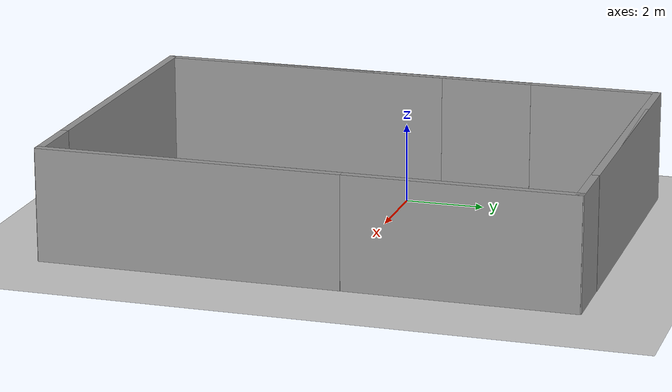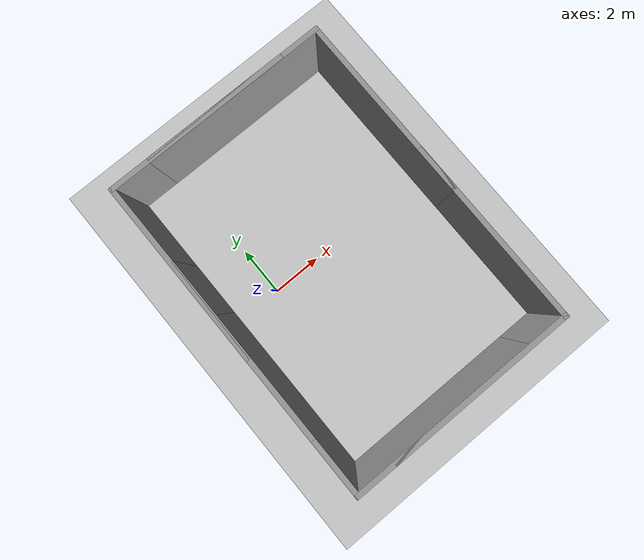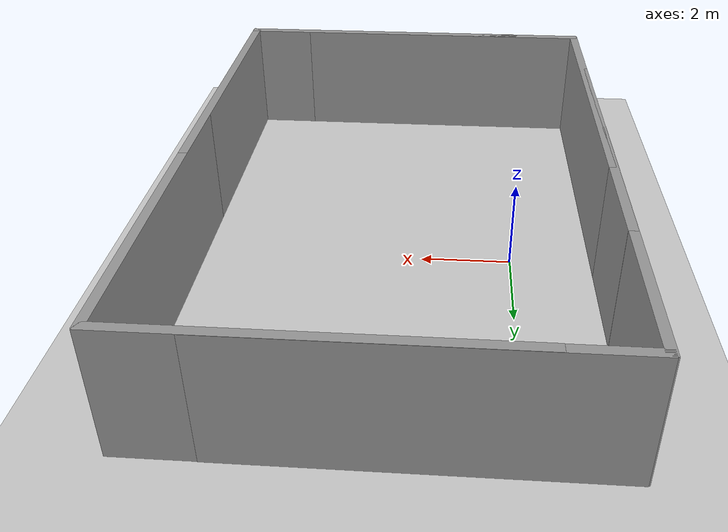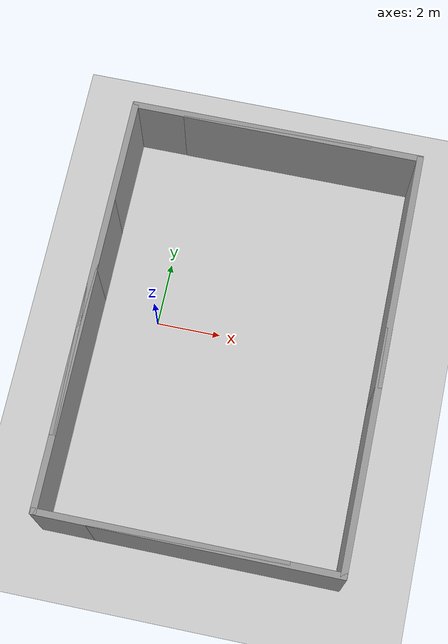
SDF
<sdf version="1.7">
 <world name="default">
  <plugin name="gazebo_ros_state" filename="libgazebo_ros_state.so">
   <ros><namespace>/gazebo_spawner</namespace></ros>
   <update_rate>1.0</update_rate>
  </plugin>
  <model name="ground_plane">
   <static>1</static>
   <link name="link">
    <collision name="collision">
     <geometry><plane><normal>0 0 1</normal><size>100 100</size></plane></geometry>
     <surface>
      <contact><collide_bitmask>65535</collide_bitmask></contact>
      <friction><ode><mu>100</mu><mu2>50</mu2></ode></friction>
     </surface>
    </collision>
    <visual name="visual">
     <cast_shadows>0</cast_shadows>
     <geometry><plane><normal>0 0 1</normal><size>100 100</size></plane></geometry>
     <material>
      <script><uri>file://media/materials/scripts/gazebo.material</uri><name>Gazebo/Grey</name></script>
     </material>
    </visual>
   </link>
  </model>
  <light name="sun" type="directional">
   <pose>0 0 10 0 -0 0</pose>
   <diffuse>0.8 0.8 0.8 1</diffuse>
   <specular>0.2 0.2 0.2 1</specular>
   <attenuation>
    <range>1000</range>
    <constant>0.9</constant>
    <linear>0.01</linear>
    <quadratic>0.001</quadratic>
   </attenuation>
   <direction>-0.5 0.1 -0.9</direction>
   <spot><inner_angle>0</inner_angle><outer_angle>0</outer_angle><falloff>0</falloff></spot>
  </light>
  <gravity>0 0 -9.8</gravity>
  <magnetic_field>6e-06 2.3e-05 -4.2e-05</magnetic_field>
  <atmosphere type="adiabatic"/>
  <physics type="ode">
   <max_step_size>0.001</max_step_size>
   <real_time_factor>1</real_time_factor>
   <real_time_update_rate>1000</real_time_update_rate>
  </physics>
  <scene><ambient>0.4 0.4 0.4 1</ambient><background>0.7 0.7 0.7 1</background><shadows>1</shadows></scene>
  <audio><device>default</device></audio>
  <spherical_coordinates>
   <surface_model>EARTH_WGS84</surface_model>
   <latitude_deg>0</latitude_deg>
   <longitude_deg>0</longitude_deg>
   <elevation>0</elevation>
   <heading_deg>0</heading_deg>
  </spherical_coordinates>
  <model name="grey_wall_0_clone_clone_clone_0">
   <static>1</static>
   <link name="link">
    <pose>0 0 1.4 0 -0 0</pose>
    <collision name="collision"><geometry><box><size>7.5 0.2 2.8</size></box></geometry></collision>
    <visual name="visual">
     <cast_shadows>0</cast_shadows>
     <geometry><box><size>7.5 0.2 2.8</size></box></geometry>
     <material>
      <script>
       <uri>model://grey_wall/materials/scripts</uri>
       <uri>model://grey_wall/materials/textures</uri>
       <name>vrc/grey_wall</name>
      </script>
     </material>
    </visual>
   </link>
   <pose>7.05178 2.31216 -0 0 0 -1.57</pose>
  </model>
  <model name="grey_wall_clone_clone">
   <static>1</static>
   <link name="link">
    <pose>0 0 1.4 0 -0 0</pose>
    <collision name="collision"><geometry><box><size>7.5 0.2 2.8</size></box></geometry></collision>
    <visual name="visual">
     <cast_shadows>0</cast_shadows>
     <geometry><box><size>7.5 0.2 2.8</size></box></geometry>
     <material>
      <script>
       <uri>model://grey_wall/materials/scripts</uri>
       <uri>model://grey_wall/materials/textures</uri>
       <name>vrc/grey_wall</name>
      </script>
     </material>
    </visual>
   </link>
   <pose>1.76511 5.99519 0 0 -0 0</pose>
  </model>
  <model name="grey_wall_clone_clone_clone_clone">
   <static>1</static>
   <link name="link">
    <pose>0 0 1.4 0 -0 0</pose>
    <collision name="collision"><geometry><box><size>7.5 0.2 2.8</size></box></geometry></collision>
    <visual name="visual">
     <cast_shadows>0</cast_shadows>
     <geometry><box><size>7.5 0.2 2.8</size></box></geometry>
     <material>
      <script>
       <uri>model://grey_wall/materials/scripts</uri>
       <uri>model://grey_wall/materials/textures</uri>
       <name>vrc/grey_wall</name>
      </script>
     </material>
    </visual>
   </link>
   <pose>1.7702 -6.99336 0 0 -0 0</pose>
  </model>
  <model name="grey_wall_0_clone_clone_1_clone">
   <static>1</static>
   <link name="link">
    <pose>0 0 1.4 0 -0 0</pose>
    <collision name="collision"><geometry><box><size>7.5 0.2 2.8</size></box></geometry></collision>
    <visual name="visual">
     <cast_shadows>0</cast_shadows>
     <geometry><box><size>7.5 0.2 2.8</size></box></geometry>
     <material>
      <script>
       <uri>model://grey_wall/materials/scripts</uri>
       <uri>model://grey_wall/materials/textures</uri>
       <name>vrc/grey_wall</name>
      </script>
     </material>
    </visual>
   </link>
   <pose>-1.90546 -0.989179 0 0 0 -1.57</pose>
  </model>
  <model name="grey_wall_0_clone_clone_1_clone_clone">
   <static>1</static>
   <link name="link">
    <pose>0 0 1.4 0 -0 0</pose>
    <collision name="collision"><geometry><box><size>7.5 0.2 2.8</size></box></geometry></collision>
    <visual name="visual">
     <cast_shadows>0</cast_shadows>
     <geometry><box><size>7.5 0.2 2.8</size></box></geometry>
     <material>
      <script>
       <uri>model://grey_wall/materials/scripts</uri>
       <uri>model://grey_wall/materials/textures</uri>
       <name>vrc/grey_wall</name>
      </script>
     </material>
    </visual>
   </link>
   <pose>-1.91148 2.33215 0 0 0 -1.57</pose>
  </model>
  <model name="grey_wall_0_clone_clone_clone_0_clone">
   <static>1</static>
   <link name="link">
    <pose>0 0 1.4 0 -0 0</pose>
    <collision name="collision"><geometry><box><size>7.5 0.2 2.8</size></box></geometry></collision>
    <visual name="visual">
     <cast_shadows>0</cast_shadows>
     <geometry><box><size>7.5 0.2 2.8</size></box></geometry>
     <material>
      <script>
       <uri>model://grey_wall/materials/scripts</uri>
       <uri>model://grey_wall/materials/textures</uri>
       <name>vrc/grey_wall</name>
      </script>
     </material>
    </visual>
   </link>
   <pose>7.05807 -3.33295 0 0 0 -1.57</pose>
  </model>
  <model name="grey_wall_0_clone_clone_1_clone_clone_0">
   <static>1</static>
   <link name="link">
    <pose>0 0 1.4 0 -0 0</pose>
    <collision name="collision"><geometry><box><size>7.5 0.2 2.8</size></box></geometry></collision>
    <visual name="visual">
     <cast_shadows>0</cast_shadows>
     <geometry><box><size>7.5 0.2 2.8</size></box></geometry>
     <material>
      <script>
       <uri>model://grey_wall/materials/scripts</uri>
       <uri>model://grey_wall/materials/textures</uri>
       <name>vrc/grey_wall</name>
      </script>
     </material>
    </visual>
   </link>
   <pose>-1.90246 -3.32811 0 0 0 -1.57</pose>
  </model>
  <model name="grey_wall_clone_clone_clone">
   <static>1</static>
   <link name="link">
    <pose>0 0 1.4 0 -0 0</pose>
    <collision name="collision"><geometry><box><size>7.5 0.2 2.8</size></box></geometry></collision>
    <visual name="visual">
     <cast_shadows>0</cast_shadows>
     <geometry><box><size>7.5 0.2 2.8</size></box></geometry>
     <material>
      <script>
       <uri>model://grey_wall/materials/scripts</uri>
       <uri>model://grey_wall/materials/textures</uri>
       <name>vrc/grey_wall</name>
      </script>
     </material>
    </visual>
   </link>
   <pose>3.38954 5.98817 0 0 -0 0</pose>
  </model>
  <model name="grey_wall_clone_clone_clone_clone_0">
   <static>1</static>
   <link name="link">
    <pose>0 0 1.4 0 -0 0</pose>
    <collision name="collision"><geometry><box><size>7.5 0.2 2.8</size></box></geometry></collision>
    <visual name="visual">
     <cast_shadows>0</cast_shadows>
     <geometry><box><size>7.5 0.2 2.8</size></box></geometry>
     <material>
      <script>
       <uri>model://grey_wall/materials/scripts</uri>
       <uri>model://grey_wall/materials/textures</uri>
       <name>vrc/grey_wall</name>
      </script>
     </material>
    </visual>
   </link>
   <pose>3.4013 -6.99592 0 0 -0 0</pose>
  </model>
 </world>
</sdf>
